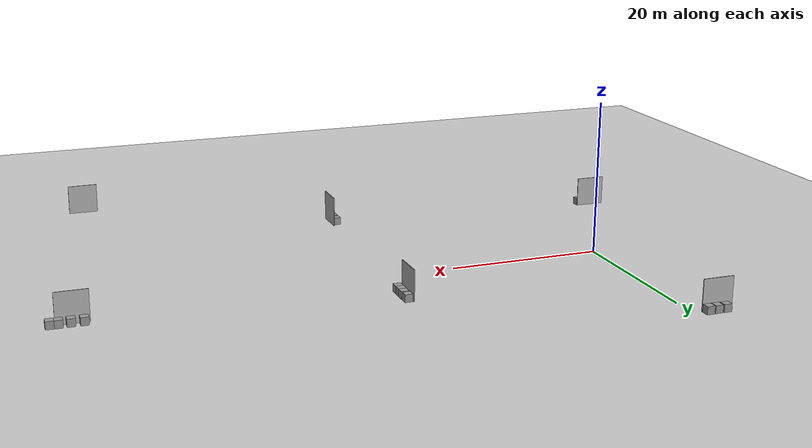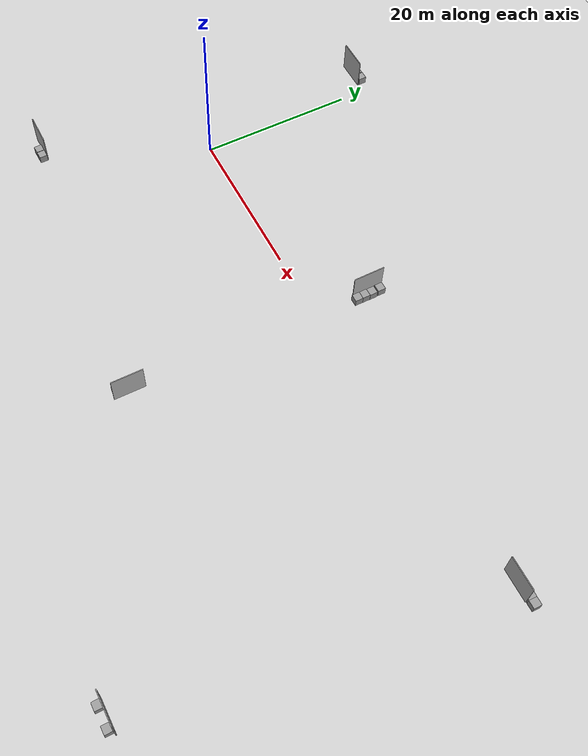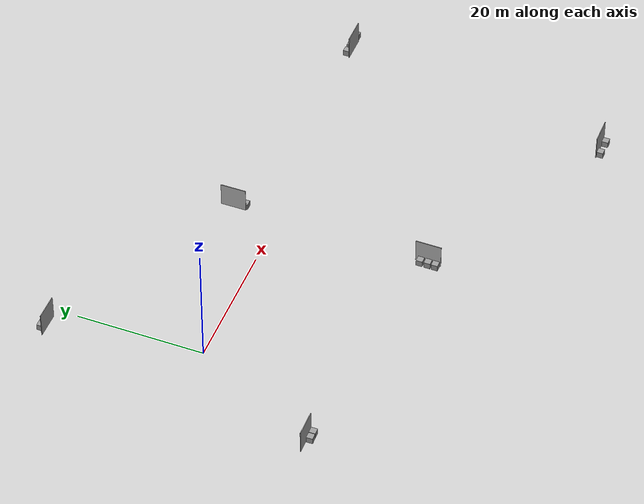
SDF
<sdf version="1.7">
 <world name="default">
  <model name="ground_plane">
   <static>1</static>
   <link name="link">
    <collision name="collision">
     <geometry><plane><normal>0 0 1</normal><size>100 100</size></plane></geometry>
     <surface><friction><ode><mu>100</mu><mu2>50</mu2></ode></friction></surface>
    </collision>
    <visual name="visual">
     <cast_shadows>0</cast_shadows>
     <geometry><plane><normal>0 0 1</normal><size>100 100</size></plane></geometry>
     <material>
      <script><uri>file://media/materials/scripts/gazebo.material</uri><name>Gazebo/Grey</name></script>
     </material>
    </visual>
   </link>
  </model>
  <light name="sun" type="directional">
   <pose>0 0 10 0 -0 0</pose>
   <diffuse>0.8 0.8 0.8 1</diffuse>
   <specular>0.2 0.2 0.2 1</specular>
   <attenuation>
    <range>1000</range>
    <constant>0.9</constant>
    <linear>0.01</linear>
    <quadratic>0.001</quadratic>
   </attenuation>
   <direction>-0.5 0.1 -0.9</direction>
   <spot><inner_angle>0</inner_angle><outer_angle>0</outer_angle><falloff>0</falloff></spot>
  </light>
  <gravity>0 0 -9.8</gravity>
  <magnetic_field>6e-06 2.3e-05 -4.2e-05</magnetic_field>
  <atmosphere type="adiabatic"/>
  <physics name="default_physics" default="0" type="ode">
   <max_step_size>0.001</max_step_size>
   <real_time_factor>1</real_time_factor>
   <real_time_update_rate>1000</real_time_update_rate>
  </physics>
  <scene><ambient>0.4 0.4 0.4 1</ambient><background>0.7 0.7 0.7 1</background><shadows>1</shadows></scene>
  <audio><device>default</device></audio>
  <spherical_coordinates>
   <surface_model>EARTH_WGS84</surface_model>
   <latitude_deg>0</latitude_deg>
   <longitude_deg>0</longitude_deg>
   <elevation>0</elevation>
   <heading_deg>0</heading_deg>
  </spherical_coordinates>
  <model name="unit_box_2">
   <pose>29.6316 8.72066 0.499995 1e-05 -0 -0.004184</pose>
   <link name="link">
    <inertial>
     <mass>1</mass>
     <inertia>
      <ixx>0.166667</ixx>
      <ixy>0</ixy>
      <ixz>0</ixz>
      <iyy>0.166667</iyy>
      <iyz>0</iyz>
      <izz>0.166667</izz>
     </inertia>
    </inertial>
    <collision name="collision"><geometry><box><size>1 1 1</size></box></geometry></collision>
    <visual name="visual">
     <geometry><box><size>1 1 1</size></box></geometry>
     <material>
      <script><name>Gazebo/Grey</name><uri>file://media/materials/scripts/gazebo.material</uri></script>
     </material>
    </visual>
   </link>
  </model>
  <model name="unit_box_3">
   <pose>29.6754 7.57235 0.499995 1e-05 0 -0.004337</pose>
   <link name="link">
    <inertial>
     <mass>1</mass>
     <inertia>
      <ixx>0.166667</ixx>
      <ixy>0</ixy>
      <ixz>0</ixz>
      <iyy>0.166667</iyy>
      <iyz>0</iyz>
      <izz>0.166667</izz>
     </inertia>
    </inertial>
    <collision name="collision"><geometry><box><size>1 1 1</size></box></geometry></collision>
    <visual name="visual">
     <geometry><box><size>1 1 1</size></box></geometry>
     <material>
      <script><name>Gazebo/Grey</name><uri>file://media/materials/scripts/gazebo.material</uri></script>
     </material>
    </visual>
   </link>
  </model>
  <model name="unit_box">
   <pose>-8.63757 -20.484 0.499999 -1e-06 -4e-06 0.002042</pose>
   <link name="link">
    <inertial>
     <mass>1</mass>
     <inertia>
      <ixx>0.166667</ixx>
      <ixy>0</ixy>
      <ixz>0</ixz>
      <iyy>0.166667</iyy>
      <iyz>0</iyz>
      <izz>0.166667</izz>
     </inertia>
    </inertial>
    <collision name="collision"><geometry><box><size>1 1 1</size></box></geometry></collision>
    <visual name="visual">
     <geometry><box><size>1 1 1</size></box></geometry>
     <material>
      <script><name>Gazebo/Grey</name><uri>file://media/materials/scripts/gazebo.material</uri></script>
     </material>
    </visual>
   </link>
  </model>
  <model name="unit_box_6">
   <pose>-9.69814 -20.5024 0.499997 -0 -6e-06 0.01945</pose>
   <link name="link">
    <inertial>
     <mass>1</mass>
     <inertia>
      <ixx>0.166667</ixx>
      <ixy>0</ixy>
      <ixz>0</ixz>
      <iyy>0.166667</iyy>
      <iyz>0</iyz>
      <izz>0.166667</izz>
     </inertia>
    </inertial>
    <collision name="collision"><geometry><box><size>1 1 1</size></box></geometry></collision>
    <visual name="visual">
     <geometry><box><size>1 1 1</size></box></geometry>
     <material>
      <script><name>Gazebo/Grey</name><uri>file://media/materials/scripts/gazebo.material</uri></script>
     </material>
    </visual>
   </link>
  </model>
  <model name="Van_gogh1">
   <pose>-4.76066 23.3314 1.99999 -2e-06 1.7e-05 1.56157</pose>
   <link name="box">
    <pose>0 -1.5 0 0 -0 0</pose>
    <collision name="collision"><geometry><box><size>0.1 4 4</size></box></geometry></collision>
    <visual name="visual">
     <geometry><box><size>0.1 4 4</size></box></geometry>
     <material>
      <script>
       <uri>model://van_gogh1/materials/scripts</uri>
       <uri>model://van_gogh1/materials/textures</uri>
       <name>Van_gogh1/Image</name>
      </script>
     </material>
    </visual>
    <inertial>
     <inertia><ixx>1</ixx><ixy>0</ixy><ixz>0</ixz><iyy>1</iyy><iyz>0</iyz><izz>1</izz></inertia>
     <mass>1</mass>
    </inertial>
   </link>
  </model>
  <model name="unit_box_4">
   <pose>-1.76028 23.9773 0.499995 -0 1e-05 9e-06</pose>
   <link name="link">
    <inertial>
     <mass>1</mass>
     <inertia>
      <ixx>0.166667</ixx>
      <ixy>0</ixy>
      <ixz>0</ixz>
      <iyy>0.166667</iyy>
      <iyz>0</iyz>
      <izz>0.166667</izz>
     </inertia>
    </inertial>
    <collision name="collision"><geometry><box><size>1 1 1</size></box></geometry></collision>
    <visual name="visual">
     <geometry><box><size>1 1 1</size></box></geometry>
     <material>
      <script><name>Gazebo/Grey</name><uri>file://media/materials/scripts/gazebo.material</uri></script>
     </material>
    </visual>
   </link>
  </model>
  <model name="unit_box_5">
   <pose>-2.86607 23.9664 0.499995 0 1e-05 -1e-05</pose>
   <link name="link">
    <inertial>
     <mass>1</mass>
     <inertia>
      <ixx>0.166667</ixx>
      <ixy>0</ixy>
      <ixz>0</ixz>
      <iyy>0.166667</iyy>
      <iyz>0</iyz>
      <izz>0.166667</izz>
     </inertia>
    </inertial>
    <collision name="collision"><geometry><box><size>1 1 1</size></box></geometry></collision>
    <visual name="visual">
     <geometry><box><size>1 1 1</size></box></geometry>
     <material>
      <script><name>Gazebo/Grey</name><uri>file://media/materials/scripts/gazebo.material</uri></script>
     </material>
    </visual>
   </link>
  </model>
  <model name="unit_box_7">
   <pose>-4.0375 23.9801 0.499995 0 1e-05 -0.012003</pose>
   <link name="link">
    <inertial>
     <mass>1</mass>
     <inertia>
      <ixx>0.166667</ixx>
      <ixy>0</ixy>
      <ixz>0</ixz>
      <iyy>0.166667</iyy>
      <iyz>0</iyz>
      <izz>0.166667</izz>
     </inertia>
    </inertial>
    <collision name="collision"><geometry><box><size>1 1 1</size></box></geometry></collision>
    <visual name="visual">
     <geometry><box><size>1 1 1</size></box></geometry>
     <material>
      <script><name>Gazebo/Grey</name><uri>file://media/materials/scripts/gazebo.material</uri></script>
     </material>
    </visual>
   </link>
  </model>
  <model name="Van_gogh1_0">
   <pose>29.0081 8.78446 2 0 8e-06 0.001569</pose>
   <link name="box">
    <pose>0 -1.5 0 0 -0 0</pose>
    <collision name="collision"><geometry><box><size>0.1 4 4</size></box></geometry></collision>
    <visual name="visual">
     <geometry><box><size>0.1 4 4</size></box></geometry>
     <material>
      <script>
       <uri>model://van_gogh1/materials/scripts</uri>
       <uri>model://van_gogh1/materials/textures</uri>
       <name>Van_gogh1/Image</name>
      </script>
     </material>
    </visual>
    <inertial>
     <inertia><ixx>1</ixx><ixy>0</ixy><ixz>0</ixz><iyy>1</iyy><iyz>0</iyz><izz>1</izz></inertia>
     <mass>1</mass>
    </inertial>
   </link>
  </model>
  <model name="unit_box_8">
   <pose>29.6461 6.57243 0.499995 0 -1e-05 -0.004314</pose>
   <link name="link">
    <inertial>
     <mass>1</mass>
     <inertia>
      <ixx>0.166667</ixx>
      <ixy>0</ixy>
      <ixz>0</ixz>
      <iyy>0.166667</iyy>
      <iyz>0</iyz>
      <izz>0.166667</izz>
     </inertia>
    </inertial>
    <collision name="collision"><geometry><box><size>1 1 1</size></box></geometry></collision>
    <visual name="visual">
     <geometry><box><size>1 1 1</size></box></geometry>
     <material>
      <script><name>Gazebo/Grey</name><uri>file://media/materials/scripts/gazebo.material</uri></script>
     </material>
    </visual>
   </link>
  </model>
  <model name="unit_box_9">
   <pose>29.6379 5.57242 0.499995 -0 1e-05 -0.004268</pose>
   <link name="link">
    <inertial>
     <mass>1</mass>
     <inertia>
      <ixx>0.166667</ixx>
      <ixy>0</ixy>
      <ixz>0</ixz>
      <iyy>0.166667</iyy>
      <iyz>0</iyz>
      <izz>0.166667</izz>
     </inertia>
    </inertial>
    <collision name="collision"><geometry><box><size>1 1 1</size></box></geometry></collision>
    <visual name="visual">
     <geometry><box><size>1 1 1</size></box></geometry>
     <material>
      <script><name>Gazebo/Grey</name><uri>file://media/materials/scripts/gazebo.material</uri></script>
     </material>
    </visual>
   </link>
  </model>
  <model name="Van_gogh12_0">
   <pose>-8.67858 -19.929 1.99999 -2e-06 -7e-06 -1.5703</pose>
   <link name="box">
    <pose>0 -1.5 0 0 -0 0</pose>
    <collision name="collision"><geometry><box><size>0.1 4 4</size></box></geometry></collision>
    <visual name="visual">
     <geometry><box><size>0.1 4 4</size></box></geometry>
     <material>
      <script>
       <uri>model://van_gogh12/materials/scripts</uri>
       <uri>model://van_gogh12/materials/textures</uri>
       <name>Van_gogh12/Image</name>
      </script>
     </material>
    </visual>
    <inertial>
     <inertia><ixx>1</ixx><ixy>0</ixy><ixz>0</ixz><iyy>1</iyy><iyz>0</iyz><izz>1</izz></inertia>
     <mass>1</mass>
    </inertial>
   </link>
  </model>
  <model name="Van_gogh1_clone">
   <pose>28.6729 -25.6191 2 -0 2e-06 3.13507</pose>
   <link name="box">
    <pose>0 -1.5 0 0 -0 0</pose>
    <collision name="collision"><geometry><box><size>0.1 4 4</size></box></geometry></collision>
    <visual name="visual">
     <geometry><box><size>0.1 4 4</size></box></geometry>
     <material>
      <script>
       <uri>model://van_gogh1/materials/scripts</uri>
       <uri>model://van_gogh1/materials/textures</uri>
       <name>Van_gogh1/Image</name>
      </script>
     </material>
    </visual>
    <inertial>
     <inertia><ixx>1</ixx><ixy>0</ixy><ixz>0</ixz><iyy>1</iyy><iyz>0</iyz><izz>1</izz></inertia>
     <mass>1</mass>
    </inertial>
   </link>
  </model>
  <model name="unit_box_6_clone">
   <pose>28.1393 -23.0606 0.499995 -1e-05 -0 -0.006594</pose>
   <link name="link">
    <inertial>
     <mass>1</mass>
     <inertia>
      <ixx>0.166667</ixx>
      <ixy>0</ixy>
      <ixz>0</ixz>
      <iyy>0.166667</iyy>
      <iyz>0</iyz>
      <izz>0.166667</izz>
     </inertia>
    </inertial>
    <collision name="collision"><geometry><box><size>1 1 1</size></box></geometry></collision>
    <visual name="visual">
     <geometry><box><size>1 1 1</size></box></geometry>
     <material>
      <script><name>Gazebo/Grey</name><uri>file://media/materials/scripts/gazebo.material</uri></script>
     </material>
    </visual>
   </link>
  </model>
  <model name="unit_box_6_clone_0">
   <pose>28.1235 -25.4611 0.499995 0 1e-05 -0.006138</pose>
   <link name="link">
    <inertial>
     <mass>1</mass>
     <inertia>
      <ixx>0.166667</ixx>
      <ixy>0</ixy>
      <ixz>0</ixz>
      <iyy>0.166667</iyy>
      <iyz>0</iyz>
      <izz>0.166667</izz>
     </inertia>
    </inertial>
    <collision name="collision"><geometry><box><size>1 1 1</size></box></geometry></collision>
    <visual name="visual">
     <geometry><box><size>1 1 1</size></box></geometry>
     <material>
      <script><name>Gazebo/Grey</name><uri>file://media/materials/scripts/gazebo.material</uri></script>
     </material>
    </visual>
   </link>
  </model>
  <model name="unit_box_6_clone_1">
   <pose>28.1315 -24.2906 0.499995 0 -1e-05 -0.006508</pose>
   <link name="link">
    <inertial>
     <mass>1</mass>
     <inertia>
      <ixx>0.166667</ixx>
      <ixy>0</ixy>
      <ixz>0</ixz>
      <iyy>0.166667</iyy>
      <iyz>0</iyz>
      <izz>0.166667</izz>
     </inertia>
    </inertial>
    <collision name="collision"><geometry><box><size>1 1 1</size></box></geometry></collision>
    <visual name="visual">
     <geometry><box><size>1 1 1</size></box></geometry>
     <material>
      <script><name>Gazebo/Grey</name><uri>file://media/materials/scripts/gazebo.material</uri></script>
     </material>
    </visual>
   </link>
  </model>
  <model name="Van_gogh1_clone_0">
   <pose>66.4824 2.86256 2 2e-06 8e-06 1.56429</pose>
   <link name="box">
    <pose>0 -1.5 0 0 -0 0</pose>
    <collision name="collision"><geometry><box><size>0.1 4 4</size></box></geometry></collision>
    <visual name="visual">
     <geometry><box><size>0.1 4 4</size></box></geometry>
     <material>
      <script>
       <uri>model://van_gogh1/materials/scripts</uri>
       <uri>model://van_gogh1/materials/textures</uri>
       <name>Van_gogh1/Image</name>
      </script>
     </material>
    </visual>
    <inertial>
     <inertia><ixx>1</ixx><ixy>0</ixy><ixz>0</ixz><iyy>1</iyy><iyz>0</iyz><izz>1</izz></inertia>
     <mass>1</mass>
    </inertial>
   </link>
  </model>
  <model name="unit_box_2_clone">
   <pose>66.7181 3.44022 0.499995 1e-05 0 -0.005489</pose>
   <link name="link">
    <inertial>
     <mass>1</mass>
     <inertia>
      <ixx>0.166667</ixx>
      <ixy>0</ixy>
      <ixz>0</ixz>
      <iyy>0.166667</iyy>
      <iyz>0</iyz>
      <izz>0.166667</izz>
     </inertia>
    </inertial>
    <collision name="collision"><geometry><box><size>1 1 1</size></box></geometry></collision>
    <visual name="visual">
     <geometry><box><size>1 1 1</size></box></geometry>
     <material>
      <script><name>Gazebo/Grey</name><uri>file://media/materials/scripts/gazebo.material</uri></script>
     </material>
    </visual>
   </link>
  </model>
  <model name="unit_box_2_clone_0">
   <pose>69.6239 3.39667 0.499995 1e-05 0 -0.010273</pose>
   <link name="link">
    <inertial>
     <mass>1</mass>
     <inertia>
      <ixx>0.166667</ixx>
      <ixy>0</ixy>
      <ixz>0</ixz>
      <iyy>0.166667</iyy>
      <iyz>0</iyz>
      <izz>0.166667</izz>
     </inertia>
    </inertial>
    <collision name="collision"><geometry><box><size>1 1 1</size></box></geometry></collision>
    <visual name="visual">
     <geometry><box><size>1 1 1</size></box></geometry>
     <material>
      <script><name>Gazebo/Grey</name><uri>file://media/materials/scripts/gazebo.material</uri></script>
     </material>
    </visual>
   </link>
  </model>
  <model name="unit_box_2_clone_1">
   <pose>68.2291 3.40184 0.499995 -1e-05 0 -0.007168</pose>
   <link name="link">
    <inertial>
     <mass>1</mass>
     <inertia>
      <ixx>0.166667</ixx>
      <ixy>0</ixy>
      <ixz>0</ixz>
      <iyy>0.166667</iyy>
      <iyz>0</iyz>
      <izz>0.166667</izz>
     </inertia>
    </inertial>
    <collision name="collision"><geometry><box><size>1 1 1</size></box></geometry></collision>
    <visual name="visual">
     <geometry><box><size>1 1 1</size></box></geometry>
     <material>
      <script><name>Gazebo/Grey</name><uri>file://media/materials/scripts/gazebo.material</uri></script>
     </material>
    </visual>
   </link>
  </model>
  <model name="unit_box_2_clone_2">
   <pose>70.6236 3.36784 0.5 0 0 -0.010297</pose>
   <link name="link">
    <inertial>
     <mass>1</mass>
     <inertia>
      <ixx>0.166667</ixx>
      <ixy>0</ixy>
      <ixz>0</ixz>
      <iyy>0.166667</iyy>
      <iyz>0</iyz>
      <izz>0.166667</izz>
     </inertia>
    </inertial>
    <collision name="collision"><geometry><box><size>1 1 1</size></box></geometry></collision>
    <visual name="visual">
     <geometry><box><size>1 1 1</size></box></geometry>
     <material>
      <script><name>Gazebo/Grey</name><uri>file://media/materials/scripts/gazebo.material</uri></script>
     </material>
    </visual>
   </link>
  </model>
  <model name="Van_gogh1_clone_0_clone">
   <pose>59.3452 -40.4003 2 0 2e-06 1.57209</pose>
   <link name="box">
    <pose>0 -1.5 0 0 -0 0</pose>
    <collision name="collision"><geometry><box><size>0.1 4 4</size></box></geometry></collision>
    <visual name="visual">
     <geometry><box><size>0.1 4 4</size></box></geometry>
     <material>
      <script>
       <uri>model://van_gogh1/materials/scripts</uri>
       <uri>model://van_gogh1/materials/textures</uri>
       <name>Van_gogh1/Image</name>
      </script>
     </material>
    </visual>
    <inertial>
     <inertia><ixx>1</ixx><ixy>0</ixy><ixz>0</ixz><iyy>1</iyy><iyz>0</iyz><izz>1</izz></inertia>
     <mass>1</mass>
    </inertial>
   </link>
  </model>
  <model name="unit_box_2_clone_2_clone">
   <pose>59.5605 -40.9507 0.5 0 -0 0.001749</pose>
   <link name="link">
    <inertial>
     <mass>1</mass>
     <inertia>
      <ixx>0.166667</ixx>
      <ixy>0</ixy>
      <ixz>0</ixz>
      <iyy>0.166667</iyy>
      <iyz>0</iyz>
      <izz>0.166667</izz>
     </inertia>
    </inertial>
    <collision name="collision"><geometry><box><size>1 1 1</size></box></geometry></collision>
    <visual name="visual">
     <geometry><box><size>1 1 1</size></box></geometry>
     <material>
      <script><name>Gazebo/Grey</name><uri>file://media/materials/scripts/gazebo.material</uri></script>
     </material>
    </visual>
   </link>
  </model>
  <model name="unit_box_2_clone_2_clone_0">
   <pose>62.0527 -40.9485 0.499995 1e-05 -0 0.001745</pose>
   <link name="link">
    <inertial>
     <mass>1</mass>
     <inertia>
      <ixx>0.166667</ixx>
      <ixy>0</ixy>
      <ixz>0</ixz>
      <iyy>0.166667</iyy>
      <iyz>0</iyz>
      <izz>0.166667</izz>
     </inertia>
    </inertial>
    <collision name="collision"><geometry><box><size>1 1 1</size></box></geometry></collision>
    <visual name="visual">
     <geometry><box><size>1 1 1</size></box></geometry>
     <material>
      <script><name>Gazebo/Grey</name><uri>file://media/materials/scripts/gazebo.material</uri></script>
     </material>
    </visual>
   </link>
  </model>
 </world>
</sdf>
